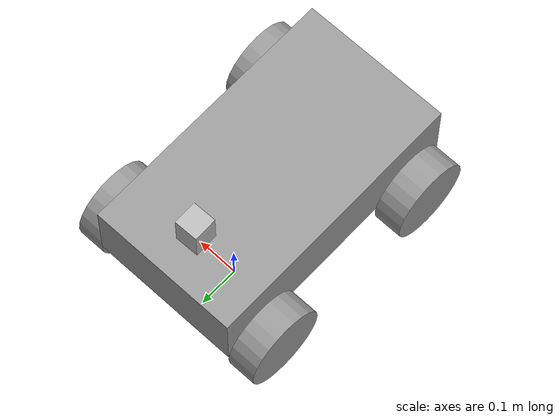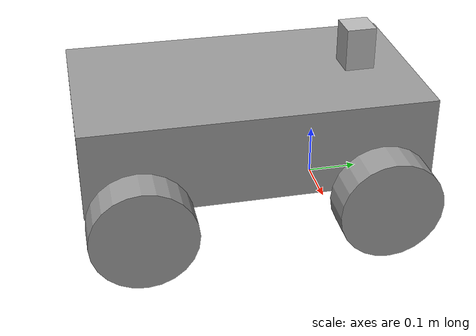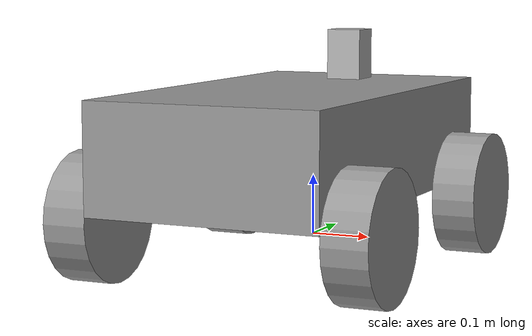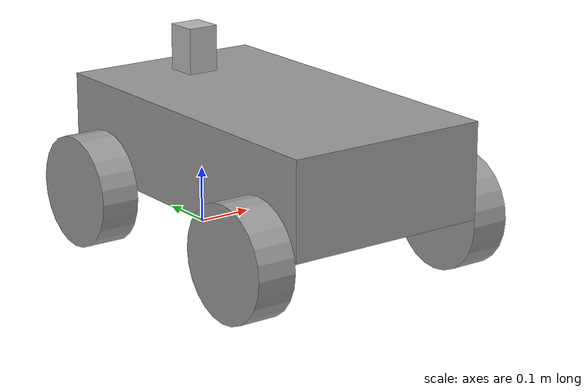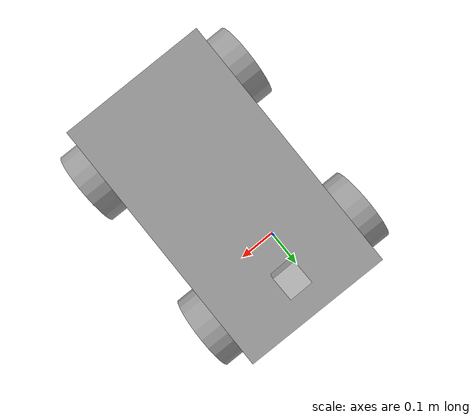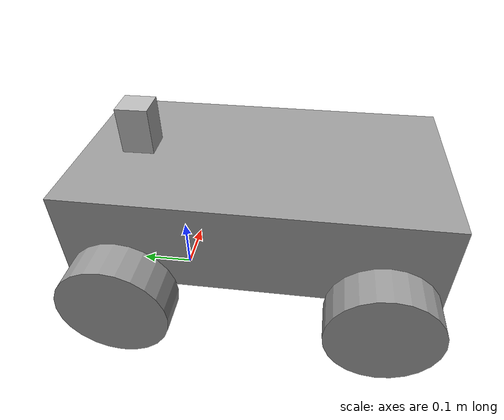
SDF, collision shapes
<?xml version='1.0'?>
<sdf version='1.6'>
  <model name='Finderbot_Lidar'>
    <model name='Finderbot'>
      <link name='chassis'>
        <inertial>
          <mass>0.961969</mass>
          <inertia>
            <ixx>0.154347</ixx>
            <ixy>0</ixy>
            <ixz>0</ixz>
            <iyy>0.154347</iyy>
            <iyz>0</iyz>
            <izz>0.160328</izz>
          </inertia>
          <pose frame=''>0 0 0 0 -0 0</pose>
        </inertial>
        <pose frame=''>0.070818 -0.081206 0.487978 0 -0 0</pose>
        <gravity>1</gravity>
        <self_collide>0</self_collide>
        <kinematic>0</kinematic>
        <enable_wind>0</enable_wind>
        <visual name='visual'>
          <pose frame=''>0 0 0 0 -0 0</pose>
          <geometry>
            <box>
              <size>0.37 0.66 0.17</size>
            </box>
          </geometry>
          <material>
            <lighting>1</lighting>
            <script>
              <uri>file://media/materials/scripts/gazebo.material</uri>
              <name>Gazebo/Grey</name>
            </script>
            <shader type='vertex'>
              <normal_map>__default__</normal_map>
            </shader>
            <ambient>0.3 0.3 0.3 1</ambient>
            <diffuse>0.7 0.7 0.7 1</diffuse>
            <specular>0.01 0.01 0.01 1</specular>
            <emissive>0 0 0 1</emissive>
          </material>
          <transparency>0</transparency>
          <cast_shadows>1</cast_shadows>
        </visual>
        <collision name='collision'>
          <laser_retro>0</laser_retro>
          <max_contacts>10</max_contacts>
          <pose frame=''>0 0 0 0 -0 0</pose>
          <geometry>
            <box>
              <size>0.37 0.66 0.17</size>
            </box>
          </geometry>
          <surface>
            <friction>
              <ode>
                <mu>1</mu>
                <mu2>1</mu2>
                <fdir1>0 0 0</fdir1>
                <slip1>0</slip1>
                <slip2>0</slip2>
              </ode>
              <torsional>
                <coefficient>1</coefficient>
                <patch_radius>0</patch_radius>
                <surface_radius>0</surface_radius>
                <use_patch_radius>1</use_patch_radius>
                <ode>
                  <slip>0</slip>
                </ode>
              </torsional>
            </friction>
            <bounce>
              <restitution_coefficient>0</restitution_coefficient>
              <threshold>1e+06</threshold>
            </bounce>
            <contact>
              <collide_without_contact>0</collide_without_contact>
              <collide_without_contact_bitmask>1</collide_without_contact_bitmask>
              <collide_bitmask>1</collide_bitmask>
              <ode>
                <soft_cfm>0</soft_cfm>
                <soft_erp>0.2</soft_erp>
                <kp>1e+13</kp>
                <kd>1</kd>
                <max_vel>0.01</max_vel>
                <min_depth>0</min_depth>
              </ode>
              <bullet>
                <split_impulse>1</split_impulse>
                <split_impulse_penetration_threshold>-0.01</split_impulse_penetration_threshold>
                <soft_cfm>0</soft_cfm>
                <soft_erp>0.2</soft_erp>
                <kp>1e+13</kp>
                <kd>1</kd>
              </bullet>
            </contact>
          </surface>
        </collision>
      </link>
      <link name='back_right_wheel'>
        <inertial>
          <mass>1</mass>
          <inertia>
            <ixx>0.145833</ixx>
            <ixy>0</ixy>
            <ixz>0</ixz>
            <iyy>0.145833</iyy>
            <iyz>0</iyz>
            <izz>0.125</izz>
          </inertia>
          <pose frame=''>0 0 0 0 -0 0</pose>
        </inertial>
        <pose frame=''>0.291009 -0.311094 0.387978 1.57 -0 1.57</pose>
        <gravity>1</gravity>
        <self_collide>0</self_collide>
        <kinematic>0</kinematic>
        <enable_wind>0</enable_wind>
        <visual name='visual'>
          <pose frame=''>0 0 0 0 -0 0</pose>
          <geometry>
            <cylinder>
              <radius>0.1</radius>
              <length>0.07</length>
            </cylinder>
          </geometry>
          <material>
            <lighting>1</lighting>
            <script>
              <uri>file://media/materials/scripts/gazebo.material</uri>
              <name>Gazebo/Grey</name>
            </script>
            <shader type='vertex'>
              <normal_map>__default__</normal_map>
            </shader>
            <ambient>0.3 0.3 0.3 1</ambient>
            <diffuse>0.7 0.7 0.7 1</diffuse>
            <specular>0.01 0.01 0.01 1</specular>
            <emissive>0 0 0 1</emissive>
          </material>
          <transparency>0</transparency>
          <cast_shadows>1</cast_shadows>
        </visual>
        <collision name='collision'>
          <laser_retro>0</laser_retro>
          <max_contacts>10</max_contacts>
          <pose frame=''>0 0 0 0 -0 0</pose>
          <geometry>
            <cylinder>
              <radius>0.1</radius>
              <length>0.07</length>
            </cylinder>
          </geometry>
          <surface>
            <friction>
              <ode>
                <mu>1</mu>
                <mu2>1</mu2>
                <fdir1>0 0 0</fdir1>
                <slip1>0</slip1>
                <slip2>0</slip2>
              </ode>
              <torsional>
                <coefficient>1</coefficient>
                <patch_radius>0</patch_radius>
                <surface_radius>0</surface_radius>
                <use_patch_radius>1</use_patch_radius>
                <ode>
                  <slip>0</slip>
                </ode>
              </torsional>
            </friction>
            <bounce>
              <restitution_coefficient>0</restitution_coefficient>
              <threshold>1e+06</threshold>
            </bounce>
            <contact>
              <collide_without_contact>0</collide_without_contact>
              <collide_without_contact_bitmask>1</collide_without_contact_bitmask>
              <collide_bitmask>1</collide_bitmask>
              <ode>
                <soft_cfm>0</soft_cfm>
                <soft_erp>0.2</soft_erp>
                <kp>1e+13</kp>
                <kd>1</kd>
                <max_vel>0.01</max_vel>
                <min_depth>0</min_depth>
              </ode>
              <bullet>
                <split_impulse>1</split_impulse>
                <split_impulse_penetration_threshold>-0.01</split_impulse_penetration_threshold>
                <soft_cfm>0</soft_cfm>
                <soft_erp>0.2</soft_erp>
                <kp>1e+13</kp>
                <kd>1</kd>
              </bullet>
            </contact>
          </surface>
        </collision>
      </link>
      <link name='front_right_wheel'>
        <inertial>
          <mass>1</mass>
          <inertia>
            <ixx>0.145833</ixx>
            <ixy>0</ixy>
            <ixz>0</ixz>
            <iyy>0.145833</iyy>
            <iyz>0</iyz>
            <izz>0.125</izz>
          </inertia>
          <pose frame=''>0 0 0 0 -0 0</pose>
        </inertial>
        <pose frame=''>0.290977 0.148766 0.387978 1.57 -0 1.57</pose>
        <gravity>1</gravity>
        <self_collide>0</self_collide>
        <kinematic>0</kinematic>
        <enable_wind>0</enable_wind>
        <visual name='visual'>
          <pose frame=''>0 0 0 0 -0 0</pose>
          <geometry>
            <cylinder>
              <radius>0.1</radius>
              <length>0.07</length>
            </cylinder>
          </geometry>
          <material>
            <lighting>1</lighting>
            <script>
              <uri>file://media/materials/scripts/gazebo.material</uri>
              <name>Gazebo/Grey</name>
            </script>
            <shader type='vertex'>
              <normal_map>__default__</normal_map>
            </shader>
            <ambient>0.3 0.3 0.3 1</ambient>
            <diffuse>0.7 0.7 0.7 1</diffuse>
            <specular>0.01 0.01 0.01 1</specular>
            <emissive>0 0 0 1</emissive>
          </material>
          <transparency>0</transparency>
          <cast_shadows>1</cast_shadows>
        </visual>
        <collision name='collision'>
          <laser_retro>0</laser_retro>
          <max_contacts>10</max_contacts>
          <pose frame=''>0 0 0 0 -0 0</pose>
          <geometry>
            <cylinder>
              <radius>0.1</radius>
              <length>0.07</length>
            </cylinder>
          </geometry>
          <surface>
            <friction>
              <ode>
                <mu>1</mu>
                <mu2>1</mu2>
                <fdir1>0 0 0</fdir1>
                <slip1>0</slip1>
                <slip2>0</slip2>
              </ode>
              <torsional>
                <coefficient>1</coefficient>
                <patch_radius>0</patch_radius>
                <surface_radius>0</surface_radius>
                <use_patch_radius>1</use_patch_radius>
                <ode>
                  <slip>0</slip>
                </ode>
              </torsional>
            </friction>
            <bounce>
              <restitution_coefficient>0</restitution_coefficient>
              <threshold>1e+06</threshold>
            </bounce>
            <contact>
              <collide_without_contact>0</collide_without_contact>
              <collide_without_contact_bitmask>1</collide_without_contact_bitmask>
              <collide_bitmask>1</collide_bitmask>
              <ode>
                <soft_cfm>0</soft_cfm>
                <soft_erp>0.2</soft_erp>
                <kp>1e+13</kp>
                <kd>1</kd>
                <max_vel>0.01</max_vel>
                <min_depth>0</min_depth>
              </ode>
              <bullet>
                <split_impulse>1</split_impulse>
                <split_impulse_penetration_threshold>-0.01</split_impulse_penetration_threshold>
                <soft_cfm>0</soft_cfm>
                <soft_erp>0.2</soft_erp>
                <kp>1e+13</kp>
                <kd>1</kd>
              </bullet>
            </contact>
          </surface>
        </collision>
      </link>
      <link name='back_left_wheel'>
        <inertial>
          <mass>1</mass>
          <inertia>
            <ixx>0.145833</ixx>
            <ixy>0</ixy>
            <ixz>0</ixz>
            <iyy>0.145833</iyy>
            <iyz>0</iyz>
            <izz>0.125</izz>
          </inertia>
          <pose frame=''>0 0 0 0 -0 0</pose>
        </inertial>
        <pose frame=''>-0.149341 -0.311178 0.387978 1.57 -0 1.57</pose>
        <gravity>1</gravity>
        <self_collide>0</self_collide>
        <kinematic>0</kinematic>
        <enable_wind>0</enable_wind>
        <visual name='visual'>
          <pose frame=''>0 0 0 0 -0 0</pose>
          <geometry>
            <cylinder>
              <radius>0.1</radius>
              <length>0.07</length>
            </cylinder>
          </geometry>
          <material>
            <lighting>1</lighting>
            <script>
              <uri>file://media/materials/scripts/gazebo.material</uri>
              <name>Gazebo/Grey</name>
            </script>
            <shader type='vertex'>
              <normal_map>__default__</normal_map>
            </shader>
            <ambient>0.3 0.3 0.3 1</ambient>
            <diffuse>0.7 0.7 0.7 1</diffuse>
            <specular>0.01 0.01 0.01 1</specular>
            <emissive>0 0 0 1</emissive>
          </material>
          <transparency>0</transparency>
          <cast_shadows>1</cast_shadows>
        </visual>
        <collision name='collision'>
          <laser_retro>0</laser_retro>
          <max_contacts>10</max_contacts>
          <pose frame=''>0 0 0 0 -0 0</pose>
          <geometry>
            <cylinder>
              <radius>0.1</radius>
              <length>0.07</length>
            </cylinder>
          </geometry>
          <surface>
            <friction>
              <ode>
                <mu>1</mu>
                <mu2>1</mu2>
                <fdir1>0 0 0</fdir1>
                <slip1>0</slip1>
                <slip2>0</slip2>
              </ode>
              <torsional>
                <coefficient>1</coefficient>
                <patch_radius>0</patch_radius>
                <surface_radius>0</surface_radius>
                <use_patch_radius>1</use_patch_radius>
                <ode>
                  <slip>0</slip>
                </ode>
              </torsional>
            </friction>
            <bounce>
              <restitution_coefficient>0</restitution_coefficient>
              <threshold>1e+06</threshold>
            </bounce>
            <contact>
              <collide_without_contact>0</collide_without_contact>
              <collide_without_contact_bitmask>1</collide_without_contact_bitmask>
              <collide_bitmask>1</collide_bitmask>
              <ode>
                <soft_cfm>0</soft_cfm>
                <soft_erp>0.2</soft_erp>
                <kp>1e+13</kp>
                <kd>1</kd>
                <max_vel>0.01</max_vel>
                <min_depth>0</min_depth>
              </ode>
              <bullet>
                <split_impulse>1</split_impulse>
                <split_impulse_penetration_threshold>-0.01</split_impulse_penetration_threshold>
                <soft_cfm>0</soft_cfm>
                <soft_erp>0.2</soft_erp>
                <kp>1e+13</kp>
                <kd>1</kd>
              </bullet>
            </contact>
          </surface>
        </collision>
      </link>
      <link name='front_left_wheel'>
        <inertial>
          <mass>1</mass>
          <inertia>
            <ixx>0.145833</ixx>
            <ixy>0</ixy>
            <ixz>0</ixz>
            <iyy>0.145833</iyy>
            <iyz>0</iyz>
            <izz>0.125</izz>
          </inertia>
          <pose frame=''>0 0 0 0 -0 0</pose>
        </inertial>
        <pose frame=''>-0.149341 0.148766 0.387978 1.57 -0 1.57</pose>
        <gravity>1</gravity>
        <self_collide>0</self_collide>
        <kinematic>0</kinematic>
        <enable_wind>0</enable_wind>
        <visual name='visual'>
          <pose frame=''>0 0 0 0 -0 0</pose>
          <geometry>
            <cylinder>
              <radius>0.1</radius>
              <length>0.07</length>
            </cylinder>
          </geometry>
          <material>
            <lighting>1</lighting>
            <script>
              <uri>file://media/materials/scripts/gazebo.material</uri>
              <name>Gazebo/Grey</name>
            </script>
            <shader type='vertex'>
              <normal_map>__default__</normal_map>
            </shader>
            <ambient>0.3 0.3 0.3 1</ambient>
            <diffuse>0.7 0.7 0.7 1</diffuse>
            <specular>0.01 0.01 0.01 1</specular>
            <emissive>0 0 0 1</emissive>
          </material>
          <transparency>0</transparency>
          <cast_shadows>1</cast_shadows>
        </visual>
        <collision name='collision'>
          <laser_retro>0</laser_retro>
          <max_contacts>10</max_contacts>
          <pose frame=''>0 0 0 0 -0 0</pose>
          <geometry>
            <cylinder>
              <radius>0.1</radius>
              <length>0.07</length>
            </cylinder>
          </geometry>
          <surface>
            <friction>
              <ode>
                <mu>1</mu>
                <mu2>1</mu2>
                <fdir1>0 0 0</fdir1>
                <slip1>0</slip1>
                <slip2>0</slip2>
              </ode>
              <torsional>
                <coefficient>1</coefficient>
                <patch_radius>0</patch_radius>
                <surface_radius>0</surface_radius>
                <use_patch_radius>1</use_patch_radius>
                <ode>
                  <slip>0</slip>
                </ode>
              </torsional>
            </friction>
            <bounce>
              <restitution_coefficient>0</restitution_coefficient>
              <threshold>1e+06</threshold>
            </bounce>
            <contact>
              <collide_without_contact>0</collide_without_contact>
              <collide_without_contact_bitmask>1</collide_without_contact_bitmask>
              <collide_bitmask>1</collide_bitmask>
              <ode>
                <soft_cfm>0</soft_cfm>
                <soft_erp>0.2</soft_erp>
                <kp>1e+13</kp>
                <kd>1</kd>
                <max_vel>0.01</max_vel>
                <min_depth>0</min_depth>
              </ode>
              <bullet>
                <split_impulse>1</split_impulse>
                <split_impulse_penetration_threshold>-0.01</split_impulse_penetration_threshold>
                <soft_cfm>0</soft_cfm>
                <soft_erp>0.2</soft_erp>
                <kp>1e+13</kp>
                <kd>1</kd>
              </bullet>
            </contact>
          </surface>
        </collision>
      </link>
      <joint name='back_right_joint' type='revolute'>
        <parent>chassis</parent>
        <child>back_right_wheel</child>
        <pose frame=''>0 0 0 0 -0 0</pose>
        <axis>
          <xyz>0 0 -1</xyz>
          <use_parent_model_frame>0</use_parent_model_frame>
          <limit>
            <lower>-1.79769e+308</lower>
            <upper>1.79769e+308</upper>
            <effort>-1</effort>
            <velocity>-1</velocity>
          </limit>
          <dynamics>
            <spring_reference>0</spring_reference>
            <spring_stiffness>0</spring_stiffness>
            <damping>0</damping>
            <friction>0</friction>
          </dynamics>
        </axis>
        <physics>
          <ode>
            <limit>
              <cfm>0</cfm>
              <erp>0.2</erp>
            </limit>
            <suspension>
              <cfm>0</cfm>
              <erp>0.2</erp>
            </suspension>
          </ode>
        </physics>
      </joint>
      <joint name='front_right_joint' type='revolute'>
        <parent>chassis</parent>
        <child>front_right_wheel</child>
        <pose frame=''>0 0 0 0 -0.01 0</pose>
        <axis>
          <xyz>0 0 -1</xyz>
          <use_parent_model_frame>0</use_parent_model_frame>
          <limit>
            <lower>-1.79769e+308</lower>
            <upper>1.79769e+308</upper>
            <effort>-1</effort>
            <velocity>-1</velocity>
          </limit>
          <dynamics>
            <spring_reference>0</spring_reference>
            <spring_stiffness>0</spring_stiffness>
            <damping>0</damping>
          </dynamics>
        </axis>
        <physics>
          <ode>
            <limit>
              <cfm>0</cfm>
              <erp>0.2</erp>
            </limit>
            <suspension>
              <cfm>0</cfm>
              <erp>0.2</erp>
            </suspension>
          </ode>
        </physics>
      </joint>
      <joint name='back_left_joint' type='revolute'>
        <parent>chassis</parent>
        <child>back_left_wheel</child>
        <pose frame=''>0 0 0 0 -0 0</pose>
        <axis>
          <xyz>0 0 -1</xyz>
          <use_parent_model_frame>0</use_parent_model_frame>
          <limit>
            <lower>-1.79769e+308</lower>
            <upper>1.79769e+308</upper>
            <effort>-1</effort>
            <velocity>-1</velocity>
          </limit>
          <dynamics>
            <spring_reference>0</spring_reference>
            <spring_stiffness>0</spring_stiffness>
            <damping>0</damping>
          </dynamics>
        </axis>
        <physics>
          <ode>
            <limit>
              <cfm>0</cfm>
              <erp>0.2</erp>
            </limit>
            <suspension>
              <cfm>0</cfm>
              <erp>0.2</erp>
            </suspension>
          </ode>
        </physics>
      </joint>
      <joint name='front_left_joint' type='revolute'>
        <parent>chassis</parent>
        <child>front_left_wheel</child>
        <pose frame=''>0 0 0 0 -0 0</pose>
        <axis>
          <xyz>0 0 -1</xyz>
          <use_parent_model_frame>0</use_parent_model_frame>
          <limit>
            <lower>-1.79769e+308</lower>
            <upper>1.79769e+308</upper>
            <effort>-1</effort>
            <velocity>-1</velocity>
          </limit>
          <dynamics>
            <spring_reference>0</spring_reference>
            <spring_stiffness>0</spring_stiffness>
            <damping>0</damping>
          </dynamics>
        </axis>
        <physics>
          <ode>
            <limit>
              <cfm>0</cfm>
              <erp>0.2</erp>
            </limit>
            <suspension>
              <cfm>0</cfm>
              <erp>0.2</erp>
            </suspension>
          </ode>
        </physics>
      </joint>
      <static>0</static>
      <allow_auto_disable>1</allow_auto_disable>
      <pose frame=''>-0.035457 -0.072805 -0.312323 0 -0 0</pose>

      <plugin name="skid_steer_drive_controller" filename="libgazebo_ros_skid_steer_drive.so">
        <updateRate>100.0</updateRate>
        <leftFrontJoint>front_left_joint</leftFrontJoint>
        <leftRearJoint>back_left_joint</leftRearJoint>
        <rightFrontJoint>front_right_joint</rightFrontJoint>
        <rightRearJoint>back_right_joint</rightRearJoint>
        <wheelDiameter>0.1</wheelDiameter>
        <wheelSeparation>0.37</wheelSeparation>
        <robotBaseFrame>chassis</robotBaseFrame>
        <torque>20</torque>
        <commandTopic>finderbot_cmd_vel</commandTopic>
        <odometryTopic>finderbot_odom</odometryTopic>
        <broadcastTF>False</broadcastTF>

      </plugin>

      <plugin name="imu_plugin" filename="libgazebo_ros_imu.so">
        <alwaysOn>true</alwaysOn>
        <bodyName>chassis</bodyName>
        <topicName>finderbot_imu</topicName>
        <serviceName>imu_service</serviceName>
        <gaussianNoise>0.0</gaussianNoise>
        <updateRate>20.0</updateRate>
      </plugin>
    </model>
    <model name='hokuyo_utm30lx'>
      <pose frame=''>0.035457 0.072805 0.312324 0 -0 1.5892</pose>
      <link name='link'>
        <inertial>
          <mass>0.27</mass>
          <inertia>
            <ixx>0.0002632</ixx>
            <iyy>0.0002632</iyy>
            <izz>0.000162</izz>
            <ixy>0</ixy>
            <ixz>0</ixz>
            <iyz>0</iyz>
          </inertia>
        </inertial>
        <visual name='visual'>
          <pose frame=''>0 0 0 0 -0 0</pose>
          <geometry>
            <mesh>
              <uri>model://hokuyo_utm30lx/meshes/hokuyo_utm_30lx.dae</uri>
            </mesh>
          </geometry>
        </visual>
        <collision name='hokuyo_collision'>
          <pose frame=''>0 0 -0.0115 0 -0 0</pose>
          <geometry>
            <box>
              <size>0.058 0.058 0.087</size>
            </box>
          </geometry>
          <max_contacts>10</max_contacts>
          <surface>
            <contact>
              <ode/>
            </contact>
            <bounce/>
            <friction>
              <torsional>
                <ode/>
              </torsional>
              <ode/>
            </friction>
          </surface>
        </collision>
        <sensor name='lidar' type='ray'>
          <pose frame=''>0 0 0.0205 0 -0 0</pose>
          <ray>
            <scan>
              <horizontal>
                <samples>260</samples>
                <min_angle>-2.2689</min_angle>
                <max_angle>2.2689</max_angle>
                <resolution>1</resolution>
              </horizontal>
              <vertical>
                <samples>1</samples>
                <min_angle>0</min_angle>
                <max_angle>0</max_angle>
              </vertical>
            </scan>
            <range>
              <min>0.08</min>
              <max>30</max>
              <resolution>0.01</resolution>
            </range>
            <noise>
              <type>gaussian</type>
              <mean>0</mean>
              <stddev>0.004</stddev>
            </noise>
          </ray>
          <plugin name="gazebo_hokuyo" filename="libgazebo_ros_laser.so">
            <topicName>/hokuyo_data</topicName>
            <robotNamespace>hokuyo</robotNamespace>
            <frameName>hokuyo_frame</frameName>
          </plugin>
          <update_rate>30</update_rate>
          <visualize>1</visualize>
          <always_on>1</always_on>
        </sensor>
        <self_collide>0</self_collide>
        <kinematic>0</kinematic>
        <gravity>1</gravity>
      </link>
    </model>
    <joint name='lidar_fixed_joint' type='fixed'>
      <parent>Finderbot::chassis</parent>
      <child>hokuyo_utm30lx::link</child>
      <pose frame=''>0 0 0 0 -0 0</pose>
      <physics>
        <ode>
          <limit>
            <cfm>0</cfm>
            <erp>0.2</erp>
          </limit>
          <suspension>
            <cfm>0</cfm>
            <erp>0.2</erp>
          </suspension>
        </ode>
      </physics>
    </joint>
    <static>0</static>
    <allow_auto_disable>1</allow_auto_disable>
  </model>
</sdf>
